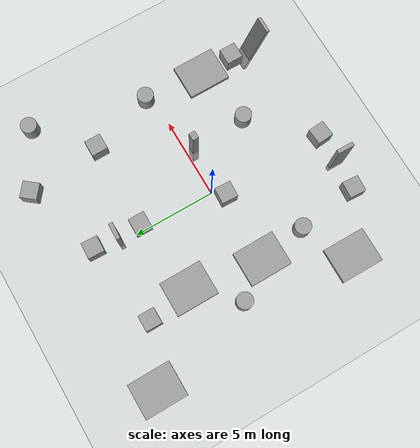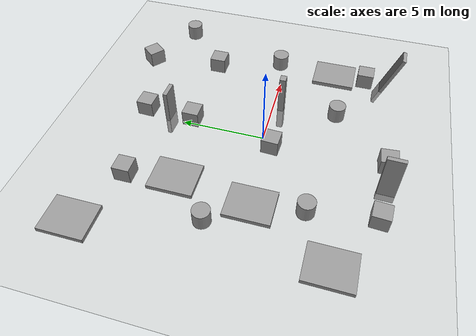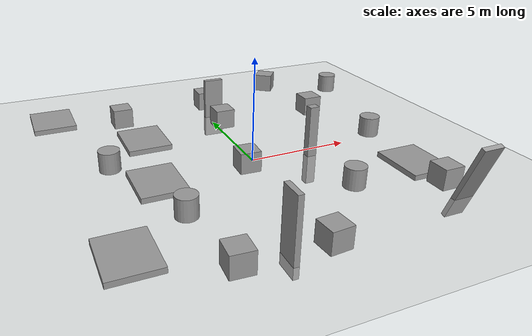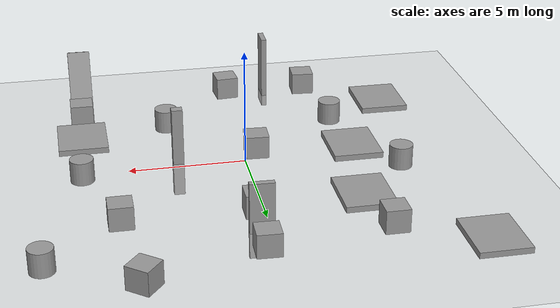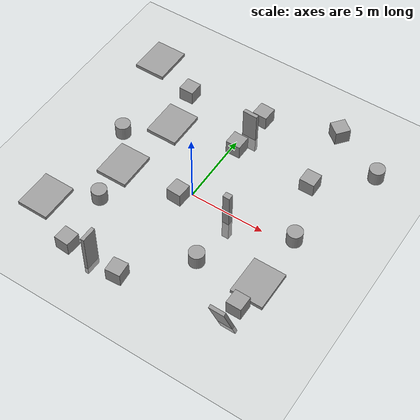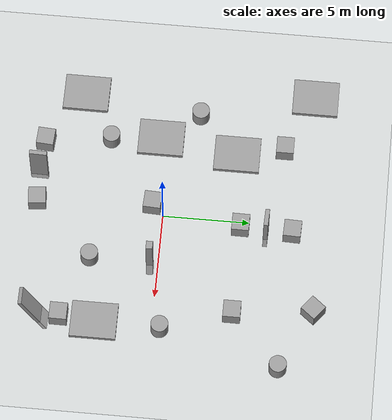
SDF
<sdf version="1.6">
 <world name="default">
  <model name="ground_plane">
   <static>1</static>
   <link name="link">
    <collision name="collision">
     <geometry><plane><normal>0 0 1</normal><size>100 100</size></plane></geometry>
     <surface><friction><ode><mu>100</mu><mu2>50</mu2></ode></friction></surface>
    </collision>
    <visual name="visual">
     <cast_shadows>0</cast_shadows>
     <geometry><plane><normal>0 0 1</normal><size>100 100</size></plane></geometry>
     <material>
      <script><uri>file://media/materials/scripts/gazebo.material</uri><name>Gazebo/Grey</name></script>
     </material>
    </visual>
   </link>
  </model>
  <light name="sun" type="directional">
   <pose>0 0 10 0 -0 0</pose>
   <diffuse>0.8 0.8 0.8 1</diffuse>
   <specular>0.1 0.1 0.1 1</specular>
   <attenuation>
    <range>1000</range>
    <constant>0.9</constant>
    <linear>0.01</linear>
    <quadratic>0.001</quadratic>
   </attenuation>
   <direction>-0.5 0.5 -1</direction>
  </light>
  <gravity>0 0 -9.8</gravity>
  <magnetic_field>6e-06 2.3e-05 -4.2e-05</magnetic_field>
  <atmosphere type="adiabatic"/>
  <physics name="default_physics" default="0" type="ode">
   <max_step_size>0.001</max_step_size>
   <real_time_factor>1</real_time_factor>
   <real_time_update_rate>1000</real_time_update_rate>
  </physics>
  <scene><ambient>0.4 0.4 0.4 1</ambient><background>0.7 0.7 0.7 1</background><shadows>1</shadows></scene>
  <spherical_coordinates>
   <surface_model>EARTH_WGS84</surface_model>
   <latitude_deg>0</latitude_deg>
   <longitude_deg>0</longitude_deg>
   <elevation>0</elevation>
   <heading_deg>0</heading_deg>
  </spherical_coordinates>
  <model name="unit_box_0">
   <pose>-0.591791 -0.636174 0.499995 0 -1e-05 -0.050972</pose>
   <link name="link">
    <inertial>
     <mass>1</mass>
     <inertia>
      <ixx>0.166667</ixx>
      <ixy>0</ixy>
      <ixz>0</ixz>
      <iyy>0.166667</iyy>
      <iyz>0</iyz>
      <izz>0.166667</izz>
     </inertia>
    </inertial>
    <collision name="collision"><geometry><box><size>1 1 1</size></box></geometry></collision>
    <visual name="visual">
     <geometry><box><size>1 1 1</size></box></geometry>
     <material>
      <script><name>Gazebo/Grey</name><uri>file://media/materials/scripts/gazebo.material</uri></script>
     </material>
    </visual>
   </link>
  </model>
  <model name="unit_box_1">
   <pose>5.6902 4.45786 0.499995 -1e-05 -0 5e-06</pose>
   <link name="link">
    <inertial>
     <mass>1</mass>
     <inertia>
      <ixx>0.166667</ixx>
      <ixy>0</ixy>
      <ixz>0</ixz>
      <iyy>0.166667</iyy>
      <iyz>0</iyz>
      <izz>0.166667</izz>
     </inertia>
    </inertial>
    <collision name="collision"><geometry><box><size>1 1 1</size></box></geometry></collision>
    <visual name="visual">
     <geometry><box><size>1 1 1</size></box></geometry>
     <material>
      <script><name>Gazebo/Grey</name><uri>file://media/materials/scripts/gazebo.material</uri></script>
     </material>
    </visual>
   </link>
  </model>
  <model name="unit_box_2">
   <pose>-4.00673 -7.15358 0.499996 -4e-06 -5e-06 -0.06513</pose>
   <link name="link">
    <inertial>
     <mass>1</mass>
     <inertia>
      <ixx>0.166667</ixx>
      <ixy>0</ixy>
      <ixz>0</ixz>
      <iyy>0.166667</iyy>
      <iyz>0</iyz>
      <izz>0.166667</izz>
     </inertia>
    </inertial>
    <collision name="collision"><geometry><box><size>1 1 1</size></box></geometry></collision>
    <visual name="visual">
     <geometry><box><size>1 1 1</size></box></geometry>
     <material>
      <script><name>Gazebo/Grey</name><uri>file://media/materials/scripts/gazebo.material</uri></script>
     </material>
    </visual>
   </link>
  </model>
  <model name="unit_box_3">
   <pose>-4.67305 6.69604 0.499995 -1e-05 -0 5e-06</pose>
   <link name="link">
    <inertial>
     <mass>1</mass>
     <inertia>
      <ixx>0.166667</ixx>
      <ixy>0</ixy>
      <ixz>0</ixz>
      <iyy>0.166667</iyy>
      <iyz>0</iyz>
      <izz>0.166667</izz>
     </inertia>
    </inertial>
    <collision name="collision"><geometry><box><size>1 1 1</size></box></geometry></collision>
    <visual name="visual">
     <geometry><box><size>1 1 1</size></box></geometry>
     <material>
      <script><name>Gazebo/Grey</name><uri>file://media/materials/scripts/gazebo.material</uri></script>
     </material>
    </visual>
   </link>
  </model>
  <model name="unit_cylinder_0">
   <pose>2.96648 -3.93403 0.499996 2e-06 1e-06 0</pose>
   <link name="link">
    <inertial>
     <mass>1</mass>
     <inertia><ixx>0.145833</ixx><ixy>0</ixy><ixz>0</ixz><iyy>0.145833</iyy><iyz>0</iyz><izz>0.125</izz></inertia>
    </inertial>
    <collision name="collision">
     <geometry><cylinder><radius>0.5</radius><length>1</length></cylinder></geometry>
    </collision>
    <visual name="visual">
     <geometry><cylinder><radius>0.5</radius><length>1</length></cylinder></geometry>
     <material>
      <script><name>Gazebo/Grey</name><uri>file://media/materials/scripts/gazebo.material</uri></script>
     </material>
    </visual>
   </link>
  </model>
  <model name="unit_cylinder_1">
   <pose>8.76021 7.30253 0.499997 4e-06 2e-06 -0</pose>
   <link name="link">
    <inertial>
     <mass>1</mass>
     <inertia><ixx>0.145833</ixx><ixy>0</ixy><ixz>0</ixz><iyy>0.145833</iyy><iyz>0</iyz><izz>0.125</izz></inertia>
    </inertial>
    <collision name="collision">
     <geometry><cylinder><radius>0.5</radius><length>1</length></cylinder></geometry>
    </collision>
    <visual name="visual">
     <geometry><cylinder><radius>0.5</radius><length>1</length></cylinder></geometry>
     <material>
      <script><name>Gazebo/Grey</name><uri>file://media/materials/scripts/gazebo.material</uri></script>
     </material>
    </visual>
   </link>
  </model>
  <model name="unit_cylinder_2">
   <pose>6.95642 0.454552 0.499996 3e-06 1e-06 -0</pose>
   <link name="link">
    <inertial>
     <mass>1</mass>
     <inertia><ixx>0.145833</ixx><ixy>0</ixy><ixz>0</ixz><iyy>0.145833</iyy><iyz>0</iyz><izz>0.125</izz></inertia>
    </inertial>
    <collision name="collision">
     <geometry><cylinder><radius>0.5</radius><length>1</length></cylinder></geometry>
    </collision>
    <visual name="visual">
     <geometry><cylinder><radius>0.5</radius><length>1</length></cylinder></geometry>
     <material>
      <script><name>Gazebo/Grey</name><uri>file://media/materials/scripts/gazebo.material</uri></script>
     </material>
    </visual>
   </link>
  </model>
  <model name="unit_cylinder_3">
   <pose>-6.42329 1.64638 0.499993 -3e-06 -1e-06 -0</pose>
   <link name="link">
    <inertial>
     <mass>1</mass>
     <inertia><ixx>0.145833</ixx><ixy>0</ixy><ixz>0</ixz><iyy>0.145833</iyy><iyz>0</iyz><izz>0.125</izz></inertia>
    </inertial>
    <collision name="collision">
     <geometry><cylinder><radius>0.5</radius><length>1</length></cylinder></geometry>
    </collision>
    <visual name="visual">
     <geometry><cylinder><radius>0.5</radius><length>1</length></cylinder></geometry>
     <material>
      <script><name>Gazebo/Grey</name><uri>file://media/materials/scripts/gazebo.material</uri></script>
     </material>
    </visual>
   </link>
  </model>
  <model name="unit_cylinder_4">
   <pose>-4.49405 -3.38824 0.499996 3e-06 1e-06 -0</pose>
   <link name="link">
    <inertial>
     <mass>1</mass>
     <inertia><ixx>0.145833</ixx><ixy>0</ixy><ixz>0</ixz><iyy>0.145833</iyy><iyz>0</iyz><izz>0.125</izz></inertia>
    </inertial>
    <collision name="collision">
     <geometry><cylinder><radius>0.5</radius><length>1</length></cylinder></geometry>
    </collision>
    <visual name="visual">
     <geometry><cylinder><radius>0.5</radius><length>1</length></cylinder></geometry>
     <material>
      <script><name>Gazebo/Grey</name><uri>file://media/materials/scripts/gazebo.material</uri></script>
     </material>
    </visual>
   </link>
  </model>
  <model name="unit_box_4">
   <pose>0.347087 4.51551 0.499995 1e-05 0 -0.011616</pose>
   <link name="link">
    <inertial>
     <mass>1</mass>
     <inertia>
      <ixx>0.166667</ixx>
      <ixy>0</ixy>
      <ixz>0</ixz>
      <iyy>0.166667</iyy>
      <iyz>0</iyz>
      <izz>0.166667</izz>
     </inertia>
    </inertial>
    <collision name="collision"><geometry><box><size>1 1 1</size></box></geometry></collision>
    <visual name="visual">
     <geometry><box><size>1 1 1</size></box></geometry>
     <material>
      <script><name>Gazebo/Grey</name><uri>file://media/materials/scripts/gazebo.material</uri></script>
     </material>
    </visual>
   </link>
  </model>
  <model name="unit_box_5">
   <pose>0.47042 7.50167 0.499995 1e-05 0 -0.037188</pose>
   <link name="link">
    <inertial>
     <mass>1</mass>
     <inertia>
      <ixx>0.166667</ixx>
      <ixy>0</ixy>
      <ixz>0</ixz>
      <iyy>0.166667</iyy>
      <iyz>0</iyz>
      <izz>0.166667</izz>
     </inertia>
    </inertial>
    <collision name="collision"><geometry><box><size>1 1 1</size></box></geometry></collision>
    <visual name="visual">
     <geometry><box><size>1 1 1</size></box></geometry>
     <material>
      <script><name>Gazebo/Grey</name><uri>file://media/materials/scripts/gazebo.material</uri></script>
     </material>
    </visual>
   </link>
  </model>
  <model name="unit_box_6">
   <pose>0.407187 5.99067 0.5 0 0 -0.038686</pose>
   <link name="link">
    <inertial>
     <mass>1</mass>
     <inertia>
      <ixx>0.166667</ixx>
      <ixy>0</ixy>
      <ixz>0</ixz>
      <iyy>0.166667</iyy>
      <iyz>0</iyz>
      <izz>0.166667</izz>
     </inertia>
    </inertial>
    <collision name="collision"><geometry><box><size>1 0.24857 3.23392</size></box></geometry></collision>
    <visual name="visual">
     <geometry><box><size>1 0.24857 3.23392</size></box></geometry>
     <material>
      <script><name>Gazebo/Grey</name><uri>file://media/materials/scripts/gazebo.material</uri></script>
     </material>
    </visual>
   </link>
  </model>
  <model name="unit_box_7">
   <pose>5.21007 9.04528 0.5 0 0 -0.677764</pose>
   <link name="link">
    <inertial>
     <mass>1</mass>
     <inertia>
      <ixx>0.166667</ixx>
      <ixy>0</ixy>
      <ixz>0</ixz>
      <iyy>0.166667</iyy>
      <iyz>0</iyz>
      <izz>0.166667</izz>
     </inertia>
    </inertial>
    <collision name="collision"><geometry><box><size>1 1 1</size></box></geometry></collision>
    <visual name="visual">
     <geometry><box><size>1 1 1</size></box></geometry>
     <material>
      <script><name>Gazebo/Grey</name><uri>file://media/materials/scripts/gazebo.material</uri></script>
     </material>
    </visual>
   </link>
  </model>
  <model name="unit_box_8">
   <pose>6.67854 -5.31705 0.5 1e-06 -0 -0.006621</pose>
   <link name="link">
    <inertial>
     <mass>1</mass>
     <inertia>
      <ixx>0.166667</ixx>
      <ixy>0</ixy>
      <ixz>0</ixz>
      <iyy>0.166667</iyy>
      <iyz>0</iyz>
      <izz>0.166667</izz>
     </inertia>
    </inertial>
    <collision name="collision"><geometry><box><size>1 1 1</size></box></geometry></collision>
    <visual name="visual">
     <geometry><box><size>1 1 1</size></box></geometry>
     <material>
      <script><name>Gazebo/Grey</name><uri>file://media/materials/scripts/gazebo.material</uri></script>
     </material>
    </visual>
   </link>
  </model>
  <model name="unit_box_9">
   <pose>-0.281025 -7.27144 0.499997 0 7e-06 0.081295</pose>
   <link name="link">
    <inertial>
     <mass>1</mass>
     <inertia>
      <ixx>0.166667</ixx>
      <ixy>0</ixy>
      <ixz>0</ixz>
      <iyy>0.166667</iyy>
      <iyz>0</iyz>
      <izz>0.166667</izz>
     </inertia>
    </inertial>
    <collision name="collision"><geometry><box><size>1 1 1</size></box></geometry></collision>
    <visual name="visual">
     <geometry><box><size>1 1 1</size></box></geometry>
     <material>
      <script><name>Gazebo/Grey</name><uri>file://media/materials/scripts/gazebo.material</uri></script>
     </material>
    </visual>
   </link>
  </model>
  <model name="unit_box_10">
   <pose>-2.11745 -7.33509 1.14289 -2e-06 2e-06 -0.023149</pose>
   <link name="link">
    <inertial>
     <mass>1</mass>
     <inertia>
      <ixx>0.166667</ixx>
      <ixy>0</ixy>
      <ixz>0</ixz>
      <iyy>0.166667</iyy>
      <iyz>0</iyz>
      <izz>0.166667</izz>
     </inertia>
    </inertial>
    <collision name="collision"><geometry><box><size>0.237116 1 3.36928</size></box></geometry></collision>
    <visual name="visual">
     <geometry><box><size>0.237116 1 3.36928</size></box></geometry>
     <material>
      <script><name>Gazebo/Grey</name><uri>file://media/materials/scripts/gazebo.material</uri></script>
     </material>
    </visual>
   </link>
  </model>
  <model name="unit_box_11">
   <pose>6.61263 -6.74622 0.82816 0.335808 1.1e-05 -0.006688</pose>
   <link name="link">
    <inertial>
     <mass>1</mass>
     <inertia>
      <ixx>0.166667</ixx>
      <ixy>0</ixy>
      <ixz>0</ixz>
      <iyy>0.166667</iyy>
      <iyz>0</iyz>
      <izz>0.166667</izz>
     </inertia>
    </inertial>
    <collision name="collision"><geometry><box><size>1 0.22026 3.89893</size></box></geometry></collision>
    <visual name="visual">
     <geometry><box><size>1 0.22026 3.89893</size></box></geometry>
     <material>
      <script><name>Gazebo/Grey</name><uri>file://media/materials/scripts/gazebo.material</uri></script>
     </material>
    </visual>
   </link>
  </model>
  <model name="unit_box_12">
   <pose>2.84548 -0.488287 0.5 0 -0 0</pose>
   <link name="link">
    <inertial>
     <mass>1</mass>
     <inertia>
      <ixx>0.166667</ixx>
      <ixy>0</ixy>
      <ixz>0</ixz>
      <iyy>0.166667</iyy>
      <iyz>0</iyz>
      <izz>0.166667</izz>
     </inertia>
    </inertial>
    <collision name="collision"><geometry><box><size>0.465672 0.379387 3.97551</size></box></geometry></collision>
    <visual name="visual">
     <geometry><box><size>0.465672 0.379387 3.97551</size></box></geometry>
     <material>
      <script><name>Gazebo/Grey</name><uri>file://media/materials/scripts/gazebo.material</uri></script>
     </material>
    </visual>
   </link>
  </model>
  <model name="unit_box_12_clone">
   <pose>-4.841 -0.517135 0.125765 0 -5e-06 0</pose>
   <link name="link">
    <inertial>
     <mass>1</mass>
     <inertia>
      <ixx>0.166667</ixx>
      <ixy>0</ixy>
      <ixz>0</ixz>
      <iyy>0.166667</iyy>
      <iyz>0</iyz>
      <izz>0.166667</izz>
     </inertia>
    </inertial>
    <collision name="collision"><geometry><box><size>2.14743 2.63582 0.25154</size></box></geometry></collision>
    <visual name="visual">
     <geometry><box><size>2.14743 2.63582 0.25154</size></box></geometry>
     <material>
      <script><name>Gazebo/Grey</name><uri>file://media/materials/scripts/gazebo.material</uri></script>
     </material>
    </visual>
   </link>
  </model>
  <model name="unit_box_12_clone_0">
   <pose>-7.30405 -5.11108 0.125765 0 -5e-06 -0.00669</pose>
   <link name="link">
    <inertial>
     <mass>1</mass>
     <inertia>
      <ixx>0.166667</ixx>
      <ixy>0</ixy>
      <ixz>0</ixz>
      <iyy>0.166667</iyy>
      <iyz>0</iyz>
      <izz>0.166667</izz>
     </inertia>
    </inertial>
    <collision name="collision"><geometry><box><size>2.14743 2.63582 0.25154</size></box></geometry></collision>
    <visual name="visual">
     <geometry><box><size>2.14743 2.63582 0.25154</size></box></geometry>
     <material>
      <script><name>Gazebo/Grey</name><uri>file://media/materials/scripts/gazebo.material</uri></script>
     </material>
    </visual>
   </link>
  </model>
  <model name="unit_box_12_clone_1">
   <pose>-4.19979 3.95523 0.125765 0 -5e-06 0</pose>
   <link name="link">
    <inertial>
     <mass>1</mass>
     <inertia>
      <ixx>0.166667</ixx>
      <ixy>0</ixy>
      <ixz>0</ixz>
      <iyy>0.166667</iyy>
      <iyz>0</iyz>
      <izz>0.166667</izz>
     </inertia>
    </inertial>
    <collision name="collision"><geometry><box><size>2.14743 2.63582 0.25154</size></box></geometry></collision>
    <visual name="visual">
     <geometry><box><size>2.14743 2.63582 0.25154</size></box></geometry>
     <material>
      <script><name>Gazebo/Grey</name><uri>file://media/materials/scripts/gazebo.material</uri></script>
     </material>
    </visual>
   </link>
  </model>
  <model name="unit_box_12_clone_2">
   <pose>-8.1554 8.23748 0.125765 0 -5e-06 0</pose>
   <link name="link">
    <inertial>
     <mass>1</mass>
     <inertia>
      <ixx>0.166667</ixx>
      <ixy>0</ixy>
      <ixz>0</ixz>
      <iyy>0.166667</iyy>
      <iyz>0</iyz>
      <izz>0.166667</izz>
     </inertia>
    </inertial>
    <collision name="collision"><geometry><box><size>2.14743 2.63582 0.25154</size></box></geometry></collision>
    <visual name="visual">
     <geometry><box><size>2.14743 2.63582 0.25154</size></box></geometry>
     <material>
      <script><name>Gazebo/Grey</name><uri>file://media/materials/scripts/gazebo.material</uri></script>
     </material>
    </visual>
   </link>
  </model>
  <model name="unit_box_12_clone_3">
   <pose>6.77804 -3.30191 0.125765 0 -5e-06 0</pose>
   <link name="link">
    <inertial>
     <mass>1</mass>
     <inertia>
      <ixx>0.166667</ixx>
      <ixy>0</ixy>
      <ixz>0</ixz>
      <iyy>0.166667</iyy>
      <iyz>0</iyz>
      <izz>0.166667</izz>
     </inertia>
    </inertial>
    <collision name="collision"><geometry><box><size>2.14743 2.63582 0.25154</size></box></geometry></collision>
    <visual name="visual">
     <geometry><box><size>2.14743 2.63582 0.25154</size></box></geometry>
     <material>
      <script><name>Gazebo/Grey</name><uri>file://media/materials/scripts/gazebo.material</uri></script>
     </material>
    </visual>
   </link>
  </model>
 </world>
</sdf>
